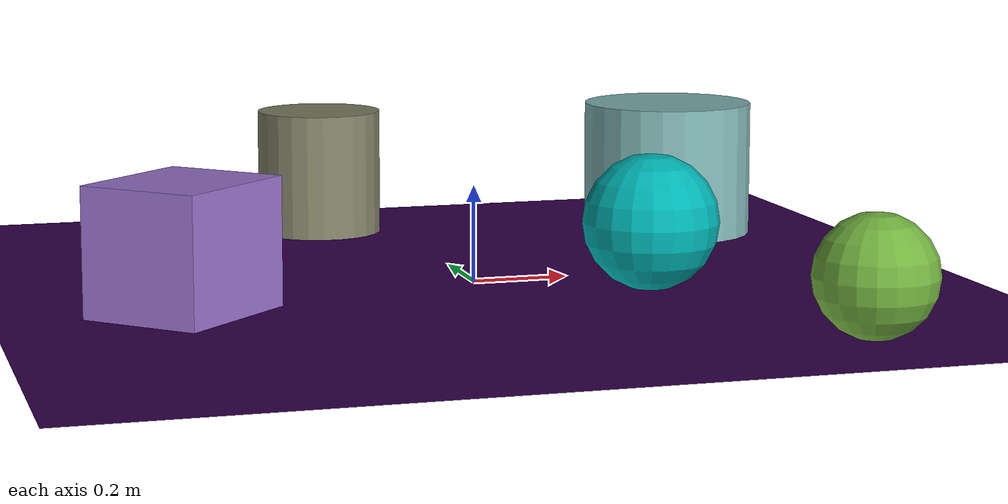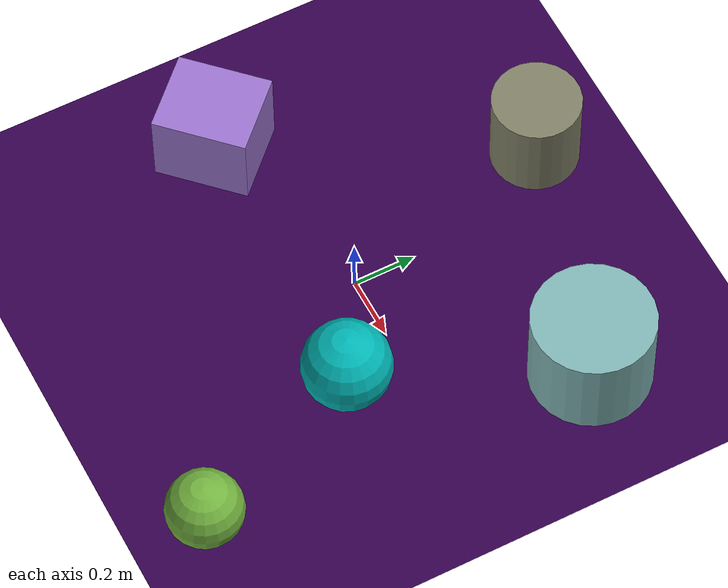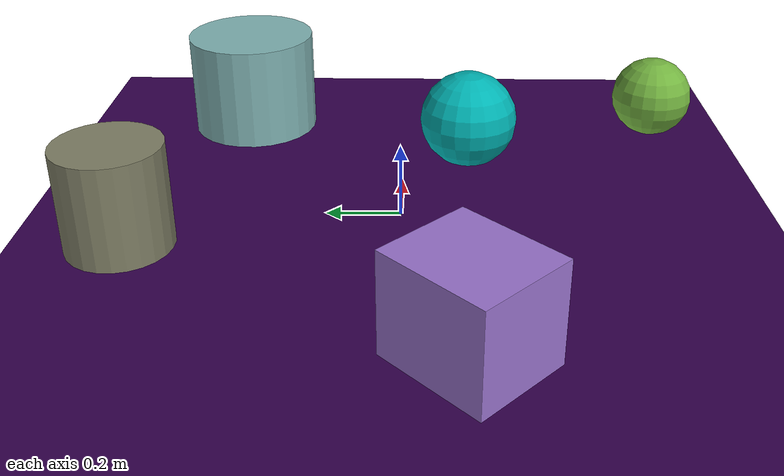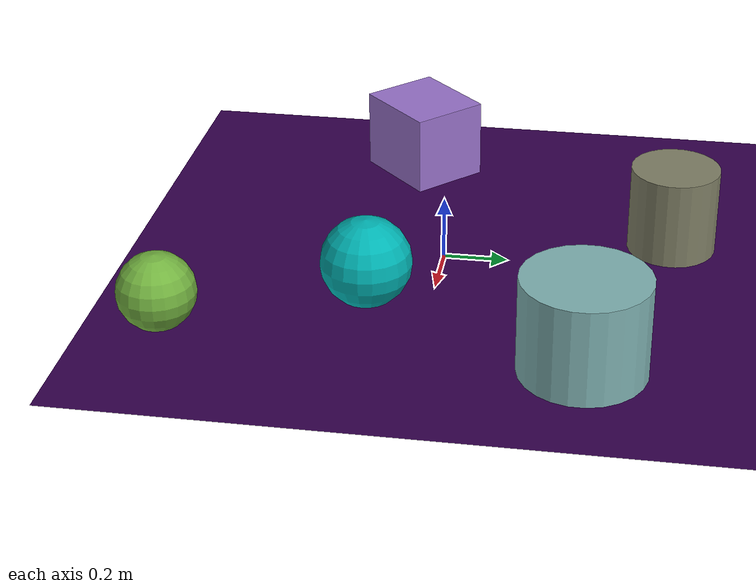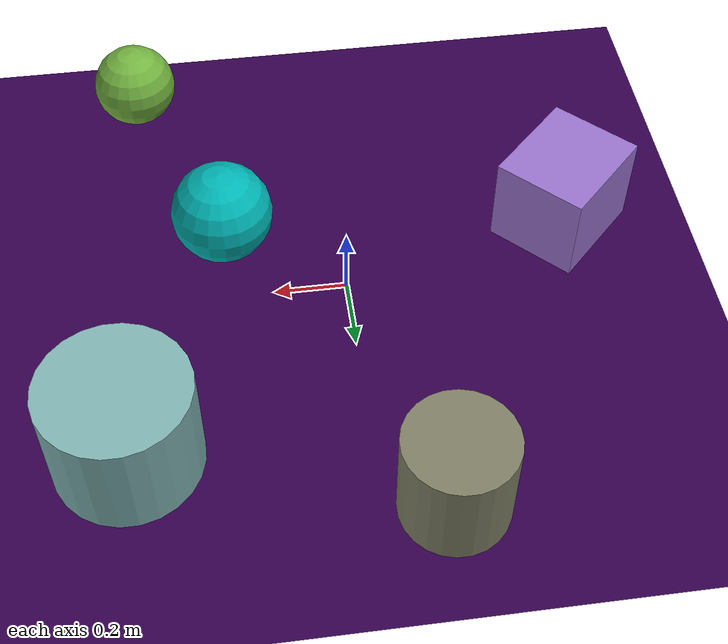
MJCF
<mujoco>
   <asset>
<texture type="skybox" builtin="gradient" rgb1="0.6 0.0 1.0" rgb2="0.0 1.0 0.0" width="500" height="500"/>
<texture name="gradient_0" builtin="gradient" rgb1="0.1 0.5 0.0" rgb2="0.8 0.9 0.5" width="500" height="500"/>
<texture name="flat_1" builtin="flat" rgb1="0.0 0.7 0.7" rgb2="0.0 0.7 0.7"  width="500" height="500"/>
<texture name="gradient_2" builtin="gradient" rgb1="0.6 0.4 0.8" rgb2="0.6 0.5 0.8" width="500" height="500"/>
<texture name="gradient_3" builtin="gradient" rgb1="0.6 1.0 0.7" rgb2="0.4 0.4 0.7" width="500" height="500"/>
<texture name="flat_4" builtin="flat" rgb1="0.5 0.5 0.4" rgb2="0.5 0.5 0.4"  width="500" height="500"/><material name="gradient_0_mat" reflectance="0.18809122602737538" texture="gradient_0" texuniform="true"/>
<material name="flat_1_mat" reflectance="0.7139255542037297" texture="flat_1" texuniform="true"/>
<material name="gradient_2_mat" reflectance="0.4050701860956847" texture="gradient_2" texuniform="true"/>
<material name="gradient_3_mat" reflectance="0.10922379511517988" texture="gradient_3" texuniform="true"/>
<material name="flat_4_mat" reflectance="0.641823528465808" texture="flat_4" texuniform="true"/>
   </asset>

   <worldbody>
     <geom type="plane" size="1 1 0.1" rgba="0.2 0.0 0.3 1" />
<light pos="0.6355140785531379 -0.02712894466014726 2" dir="0 0 -1" cutoff="90" diffuse="1 1 1" specular="1 1 1"/>
<light pos="0.677858854956767 -0.2639972710921863 2" dir="0 0 -1" cutoff="90" diffuse="1 1 1" specular="1 1 1"/>
<geom type="sphere" pos="0.55 -0.77 0.12" size="0.12 0.12 0.12" material="gradient_0_mat" euler="0 0 30" />
<geom type="sphere" pos="0.32 -0.19 0.14" size="0.14 0.14 0.14" material="flat_1_mat" euler="0 0 72" />
<geom type="box" pos="-0.63 -0.16 0.13" size="0.15 0.13 0.13" material="gradient_2_mat" euler="0 0 45" />
<geom type="cylinder" pos="0.6 0.48 0.15" size="0.19 0.15 0.15" material="gradient_3_mat" euler="0 0 82" />
<geom type="cylinder" pos="-0.17 0.71 0.14" size="0.14 0.14 0.14" material="flat_4_mat" euler="0 0 37" /><camera euler="60 0 180" fovy="60" name="camera1" pos="-0.2 -1.5 1"></camera>   </worldbody>
   <visual>
      <headlight diffuse="0.7 0.7 0.7"/>
   </visual>
</mujoco>
